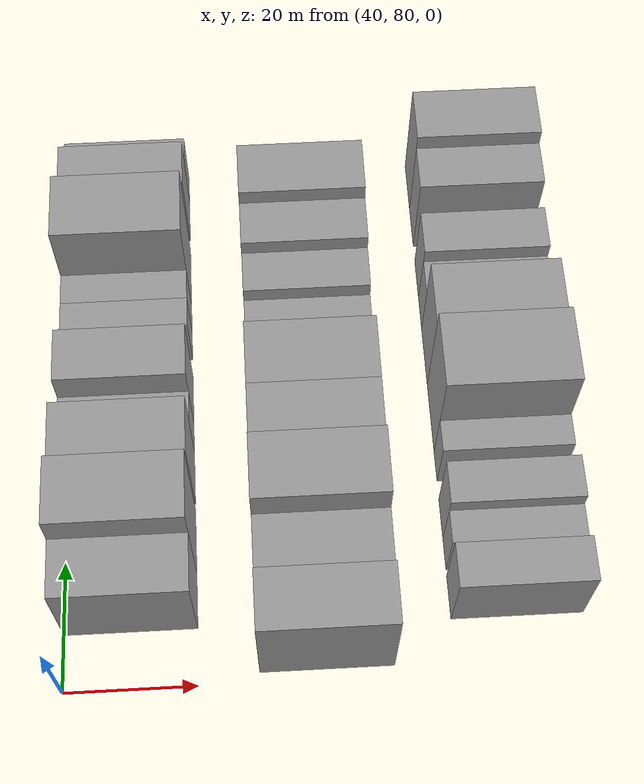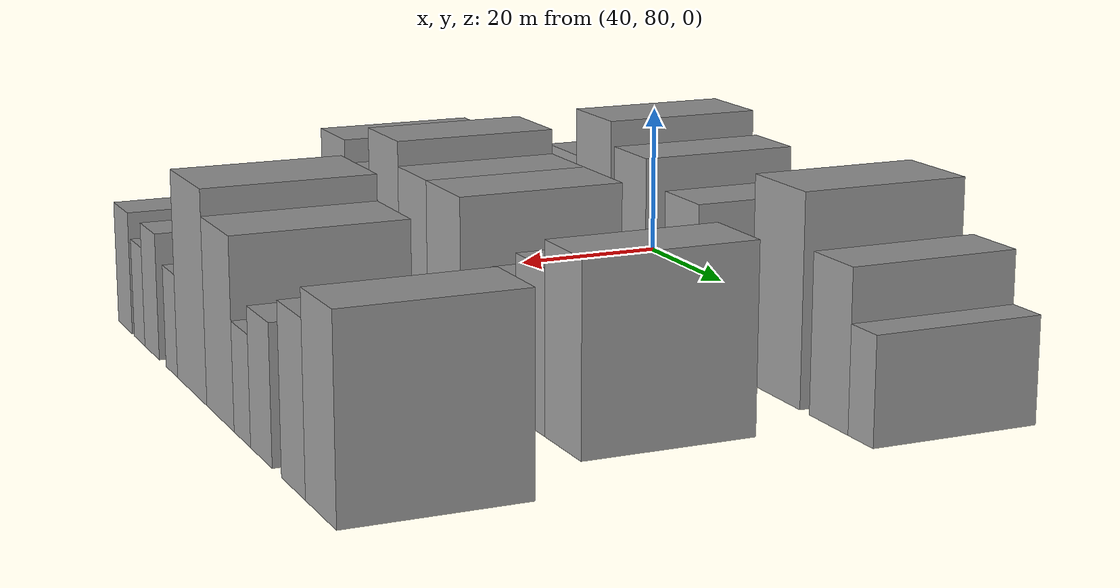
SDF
<sdf version="1.6">
 <world name="default">
  <model name="building_49">
   <static>1</static>
   <pose>50.0000 93.0449 0 0.000000 0.000000 0.000000</pose>
   <link name="link">
    <pose>0 0 9.00 0 0 0</pose>
    <collision name="collision"><geometry><box><size>20.0000 8.6791 18.0000</size></box></geometry></collision>
    <visual name="visual">
     <cast_shadows>0</cast_shadows>
     <geometry><box><size>20.0000 8.6791 18.0000</size></box></geometry>
     <material>
      <script>
       <uri>model://grey_wall/materials/scripts</uri>
       <uri>model://grey_wall/materials/textures</uri>
       <name>vrc/grey_wall</name>
      </script>
     </material>
    </visual>
   </link>
  </model>
  <model name="building_50">
   <static>1</static>
   <pose>50.0000 102.5092 0 0.000000 0.000000 0.000000</pose>
   <link name="link">
    <pose>0 0 12.00 0 0 0</pose>
    <collision name="collision"><geometry><box><size>20.0000 10.2495 24.0000</size></box></geometry></collision>
    <visual name="visual">
     <cast_shadows>0</cast_shadows>
     <geometry><box><size>20.0000 10.2495 24.0000</size></box></geometry>
     <material>
      <script>
       <uri>model://grey_wall/materials/scripts</uri>
       <uri>model://grey_wall/materials/textures</uri>
       <name>vrc/grey_wall</name>
      </script>
     </material>
    </visual>
   </link>
  </model>
  <model name="building_51">
   <static>1</static>
   <pose>50.0000 113.0198 0 0.000000 0.000000 0.000000</pose>
   <link name="link">
    <pose>0 0 10.50 0 0 0</pose>
    <collision name="collision"><geometry><box><size>20.0000 8.7718 21.0000</size></box></geometry></collision>
    <visual name="visual">
     <cast_shadows>0</cast_shadows>
     <geometry><box><size>20.0000 8.7718 21.0000</size></box></geometry>
     <material>
      <script>
       <uri>model://grey_wall/materials/scripts</uri>
       <uri>model://grey_wall/materials/textures</uri>
       <name>vrc/grey_wall</name>
      </script>
     </material>
    </visual>
   </link>
  </model>
  <model name="building_52">
   <static>1</static>
   <pose>50.0000 119.9617 0 0.000000 0.000000 0.000000</pose>
   <link name="link">
    <pose>0 0 6.00 0 0 0</pose>
    <collision name="collision"><geometry><box><size>20.0000 5.1119 12.0000</size></box></geometry></collision>
    <visual name="visual">
     <cast_shadows>0</cast_shadows>
     <geometry><box><size>20.0000 5.1119 12.0000</size></box></geometry>
     <material>
      <script>
       <uri>model://grey_wall/materials/scripts</uri>
       <uri>model://grey_wall/materials/textures</uri>
       <name>vrc/grey_wall</name>
      </script>
     </material>
    </visual>
   </link>
  </model>
  <model name="building_53">
   <static>1</static>
   <pose>50.0000 126.7689 0 0.000000 0.000000 0.000000</pose>
   <link name="link">
    <pose>0 0 9.00 0 0 0</pose>
    <collision name="collision"><geometry><box><size>20.0000 8.5026 18.0000</size></box></geometry></collision>
    <visual name="visual">
     <cast_shadows>0</cast_shadows>
     <geometry><box><size>20.0000 8.5026 18.0000</size></box></geometry>
     <material>
      <script>
       <uri>model://grey_wall/materials/scripts</uri>
       <uri>model://grey_wall/materials/textures</uri>
       <name>vrc/grey_wall</name>
      </script>
     </material>
    </visual>
   </link>
  </model>
  <model name="building_54">
   <static>1</static>
   <pose>50.0000 136.5120 0 0.000000 0.000000 0.000000</pose>
   <link name="link">
    <pose>0 0 6.00 0 0 0</pose>
    <collision name="collision"><geometry><box><size>20.0000 4.9835 12.0000</size></box></geometry></collision>
    <visual name="visual">
     <cast_shadows>0</cast_shadows>
     <geometry><box><size>20.0000 4.9835 12.0000</size></box></geometry>
     <material>
      <script>
       <uri>model://grey_wall/materials/scripts</uri>
       <uri>model://grey_wall/materials/textures</uri>
       <name>vrc/grey_wall</name>
      </script>
     </material>
    </visual>
   </link>
  </model>
  <model name="building_55">
   <static>1</static>
   <pose>50.0000 141.5558 0 0.000000 0.000000 0.000000</pose>
   <link name="link">
    <pose>0 0 6.00 0 0 0</pose>
    <collision name="collision"><geometry><box><size>20.0000 5.1041 12.0000</size></box></geometry></collision>
    <visual name="visual">
     <cast_shadows>0</cast_shadows>
     <geometry><box><size>20.0000 5.1041 12.0000</size></box></geometry>
     <material>
      <script>
       <uri>model://grey_wall/materials/scripts</uri>
       <uri>model://grey_wall/materials/textures</uri>
       <name>vrc/grey_wall</name>
      </script>
     </material>
    </visual>
   </link>
  </model>
  <model name="building_56">
   <static>1</static>
   <pose>50.0000 149.5086 0 0.000000 0.000000 0.000000</pose>
   <link name="link">
    <pose>0 0 12.00 0 0 0</pose>
    <collision name="collision"><geometry><box><size>20.0000 10.8015 24.0000</size></box></geometry></collision>
    <visual name="visual">
     <cast_shadows>0</cast_shadows>
     <geometry><box><size>20.0000 10.8015 24.0000</size></box></geometry>
     <material>
      <script>
       <uri>model://grey_wall/materials/scripts</uri>
       <uri>model://grey_wall/materials/textures</uri>
       <name>vrc/grey_wall</name>
      </script>
     </material>
    </visual>
   </link>
  </model>
  <model name="building_57">
   <static>1</static>
   <pose>50.0000 160.8490 0 0.000000 0.000000 0.000000</pose>
   <link name="link">
    <pose>0 0 9.00 0 0 0</pose>
    <collision name="collision"><geometry><box><size>20.0000 7.8793 18.0000</size></box></geometry></collision>
    <visual name="visual">
     <cast_shadows>0</cast_shadows>
     <geometry><box><size>20.0000 7.8793 18.0000</size></box></geometry>
     <material>
      <script>
       <uri>model://grey_wall/materials/scripts</uri>
       <uri>model://grey_wall/materials/textures</uri>
       <name>vrc/grey_wall</name>
      </script>
     </material>
    </visual>
   </link>
  </model>
  <model name="building_58">
   <static>1</static>
   <pose>50.0000 167.2366 0 0.000000 0.000000 0.000000</pose>
   <link name="link">
    <pose>0 0 6.00 0 0 0</pose>
    <collision name="collision"><geometry><box><size>20.0000 4.8959 12.0000</size></box></geometry></collision>
    <visual name="visual">
     <cast_shadows>0</cast_shadows>
     <geometry><box><size>20.0000 4.8959 12.0000</size></box></geometry>
     <material>
      <script>
       <uri>model://grey_wall/materials/scripts</uri>
       <uri>model://grey_wall/materials/textures</uri>
       <name>vrc/grey_wall</name>
      </script>
     </material>
    </visual>
   </link>
  </model>
  <model name="building_127">
   <static>1</static>
   <pose>79.0000 86.0922 0 0.000000 0.000000 0.000000</pose>
   <link name="link">
    <pose>0 0 10.50 0 0 0</pose>
    <collision name="collision"><geometry><box><size>20.0000 9.1073 21.0000</size></box></geometry></collision>
    <visual name="visual">
     <cast_shadows>0</cast_shadows>
     <geometry><box><size>20.0000 9.1073 21.0000</size></box></geometry>
     <material>
      <script>
       <uri>model://grey_wall/materials/scripts</uri>
       <uri>model://grey_wall/materials/textures</uri>
       <name>vrc/grey_wall</name>
      </script>
     </material>
    </visual>
   </link>
  </model>
  <model name="building_128">
   <static>1</static>
   <pose>79.0000 95.1321 0 0.000000 0.000000 0.000000</pose>
   <link name="link">
    <pose>0 0 9.00 0 0 0</pose>
    <collision name="collision"><geometry><box><size>20.0000 8.9725 18.0000</size></box></geometry></collision>
    <visual name="visual">
     <cast_shadows>0</cast_shadows>
     <geometry><box><size>20.0000 8.9725 18.0000</size></box></geometry>
     <material>
      <script>
       <uri>model://grey_wall/materials/scripts</uri>
       <uri>model://grey_wall/materials/textures</uri>
       <name>vrc/grey_wall</name>
      </script>
     </material>
    </visual>
   </link>
  </model>
  <model name="building_129">
   <static>1</static>
   <pose>79.0000 104.7010 0 0.000000 0.000000 0.000000</pose>
   <link name="link">
    <pose>0 0 12.00 0 0 0</pose>
    <collision name="collision"><geometry><box><size>20.0000 10.1653 24.0000</size></box></geometry></collision>
    <visual name="visual">
     <cast_shadows>0</cast_shadows>
     <geometry><box><size>20.0000 10.1653 24.0000</size></box></geometry>
     <material>
      <script>
       <uri>model://grey_wall/materials/scripts</uri>
       <uri>model://grey_wall/materials/textures</uri>
       <name>vrc/grey_wall</name>
      </script>
     </material>
    </visual>
   </link>
  </model>
  <model name="building_130">
   <static>1</static>
   <pose>79.0000 114.3850 0 0.000000 0.000000 0.000000</pose>
   <link name="link">
    <pose>0 0 10.50 0 0 0</pose>
    <collision name="collision"><geometry><box><size>20.0000 9.2029 21.0000</size></box></geometry></collision>
    <visual name="visual">
     <cast_shadows>0</cast_shadows>
     <geometry><box><size>20.0000 9.2029 21.0000</size></box></geometry>
     <material>
      <script>
       <uri>model://grey_wall/materials/scripts</uri>
       <uri>model://grey_wall/materials/textures</uri>
       <name>vrc/grey_wall</name>
      </script>
     </material>
    </visual>
   </link>
  </model>
  <model name="building_131">
   <static>1</static>
   <pose>79.0000 124.1394 0 0.000000 0.000000 0.000000</pose>
   <link name="link">
    <pose>0 0 10.50 0 0 0</pose>
    <collision name="collision"><geometry><box><size>20.0000 10.3058 21.0000</size></box></geometry></collision>
    <visual name="visual">
     <cast_shadows>0</cast_shadows>
     <geometry><box><size>20.0000 10.3058 21.0000</size></box></geometry>
     <material>
      <script>
       <uri>model://grey_wall/materials/scripts</uri>
       <uri>model://grey_wall/materials/textures</uri>
       <name>vrc/grey_wall</name>
      </script>
     </material>
    </visual>
   </link>
  </model>
  <model name="building_132">
   <static>1</static>
   <pose>79.0000 135.1444 0 0.000000 0.000000 0.000000</pose>
   <link name="link">
    <pose>0 0 6.00 0 0 0</pose>
    <collision name="collision"><geometry><box><size>20.0000 5.7042 12.0000</size></box></geometry></collision>
    <visual name="visual">
     <cast_shadows>0</cast_shadows>
     <geometry><box><size>20.0000 5.7042 12.0000</size></box></geometry>
     <material>
      <script>
       <uri>model://grey_wall/materials/scripts</uri>
       <uri>model://grey_wall/materials/textures</uri>
       <name>vrc/grey_wall</name>
      </script>
     </material>
    </visual>
   </link>
  </model>
  <model name="building_133">
   <static>1</static>
   <pose>79.0000 141.4276 0 0.000000 0.000000 0.000000</pose>
   <link name="link">
    <pose>0 0 7.50 0 0 0</pose>
    <collision name="collision"><geometry><box><size>20.0000 6.8623 15.0000</size></box></geometry></collision>
    <visual name="visual">
     <cast_shadows>0</cast_shadows>
     <geometry><box><size>20.0000 6.8623 15.0000</size></box></geometry>
     <material>
      <script>
       <uri>model://grey_wall/materials/scripts</uri>
       <uri>model://grey_wall/materials/textures</uri>
       <name>vrc/grey_wall</name>
      </script>
     </material>
    </visual>
   </link>
  </model>
  <model name="building_134">
   <static>1</static>
   <pose>79.0000 148.5829 0 0.000000 0.000000 0.000000</pose>
   <link name="link">
    <pose>0 0 9.00 0 0 0</pose>
    <collision name="collision"><geometry><box><size>20.0000 7.4484 18.0000</size></box></geometry></collision>
    <visual name="visual">
     <cast_shadows>0</cast_shadows>
     <geometry><box><size>20.0000 7.4484 18.0000</size></box></geometry>
     <material>
      <script>
       <uri>model://grey_wall/materials/scripts</uri>
       <uri>model://grey_wall/materials/textures</uri>
       <name>vrc/grey_wall</name>
      </script>
     </material>
    </visual>
   </link>
  </model>
  <model name="building_135">
   <static>1</static>
   <pose>79.0000 156.8227 0 0.000000 0.000000 0.000000</pose>
   <link name="link">
    <pose>0 0 10.50 0 0 0</pose>
    <collision name="collision"><geometry><box><size>20.0000 9.0311 21.0000</size></box></geometry></collision>
    <visual name="visual">
     <cast_shadows>0</cast_shadows>
     <geometry><box><size>20.0000 9.0311 21.0000</size></box></geometry>
     <material>
      <script>
       <uri>model://grey_wall/materials/scripts</uri>
       <uri>model://grey_wall/materials/textures</uri>
       <name>vrc/grey_wall</name>
      </script>
     </material>
    </visual>
   </link>
  </model>
  <model name="building_201">
   <static>1</static>
   <pose>108.0000 91.5136 0 0.000000 0.000000 0.000000</pose>
   <link name="link">
    <pose>0 0 7.50 0 0 0</pose>
    <collision name="collision"><geometry><box><size>20.0000 6.7601 15.0000</size></box></geometry></collision>
    <visual name="visual">
     <cast_shadows>0</cast_shadows>
     <geometry><box><size>20.0000 6.7601 15.0000</size></box></geometry>
     <material>
      <script>
       <uri>model://grey_wall/materials/scripts</uri>
       <uri>model://grey_wall/materials/textures</uri>
       <name>vrc/grey_wall</name>
      </script>
     </material>
    </visual>
   </link>
  </model>
  <model name="building_202">
   <static>1</static>
   <pose>108.0000 98.4161 0 0.000000 0.000000 0.000000</pose>
   <link name="link">
    <pose>0 0 6.00 0 0 0</pose>
    <collision name="collision"><geometry><box><size>20.0000 5.0449 12.0000</size></box></geometry></collision>
    <visual name="visual">
     <cast_shadows>0</cast_shadows>
     <geometry><box><size>20.0000 5.0449 12.0000</size></box></geometry>
     <material>
      <script>
       <uri>model://grey_wall/materials/scripts</uri>
       <uri>model://grey_wall/materials/textures</uri>
       <name>vrc/grey_wall</name>
      </script>
     </material>
    </visual>
   </link>
  </model>
  <model name="building_203">
   <static>1</static>
   <pose>108.0000 104.2230 0 0.000000 0.000000 0.000000</pose>
   <link name="link">
    <pose>0 0 7.50 0 0 0</pose>
    <collision name="collision"><geometry><box><size>20.0000 6.5690 15.0000</size></box></geometry></collision>
    <visual name="visual">
     <cast_shadows>0</cast_shadows>
     <geometry><box><size>20.0000 6.5690 15.0000</size></box></geometry>
     <material>
      <script>
       <uri>model://grey_wall/materials/scripts</uri>
       <uri>model://grey_wall/materials/textures</uri>
       <name>vrc/grey_wall</name>
      </script>
     </material>
    </visual>
   </link>
  </model>
  <model name="building_204">
   <static>1</static>
   <pose>108.0000 113.0110 0 0.000000 0.000000 0.000000</pose>
   <link name="link">
    <pose>0 0 6.00 0 0 0</pose>
    <collision name="collision"><geometry><box><size>20.0000 5.0070 12.0000</size></box></geometry></collision>
    <visual name="visual">
     <cast_shadows>0</cast_shadows>
     <geometry><box><size>20.0000 5.0070 12.0000</size></box></geometry>
     <material>
      <script>
       <uri>model://grey_wall/materials/scripts</uri>
       <uri>model://grey_wall/materials/textures</uri>
       <name>vrc/grey_wall</name>
      </script>
     </material>
    </visual>
   </link>
  </model>
  <model name="building_205">
   <static>1</static>
   <pose>108.0000 121.4779 0 0.000000 0.000000 0.000000</pose>
   <link name="link">
    <pose>0 0 12.00 0 0 0</pose>
    <collision name="collision"><geometry><box><size>20.0000 11.9268 24.0000</size></box></geometry></collision>
    <visual name="visual">
     <cast_shadows>0</cast_shadows>
     <geometry><box><size>20.0000 11.9268 24.0000</size></box></geometry>
     <material>
      <script>
       <uri>model://grey_wall/materials/scripts</uri>
       <uri>model://grey_wall/materials/textures</uri>
       <name>vrc/grey_wall</name>
      </script>
     </material>
    </visual>
   </link>
  </model>
  <model name="building_206">
   <static>1</static>
   <pose>108.0000 132.5848 0 0.000000 0.000000 0.000000</pose>
   <link name="link">
    <pose>0 0 10.50 0 0 0</pose>
    <collision name="collision"><geometry><box><size>20.0000 10.2871 21.0000</size></box></geometry></collision>
    <visual name="visual">
     <cast_shadows>0</cast_shadows>
     <geometry><box><size>20.0000 10.2871 21.0000</size></box></geometry>
     <material>
      <script>
       <uri>model://grey_wall/materials/scripts</uri>
       <uri>model://grey_wall/materials/textures</uri>
       <name>vrc/grey_wall</name>
      </script>
     </material>
    </visual>
   </link>
  </model>
  <model name="building_207">
   <static>1</static>
   <pose>108.0000 140.6499 0 0.000000 0.000000 0.000000</pose>
   <link name="link">
    <pose>0 0 6.00 0 0 0</pose>
    <collision name="collision"><geometry><box><size>20.0000 5.8429 12.0000</size></box></geometry></collision>
    <visual name="visual">
     <cast_shadows>0</cast_shadows>
     <geometry><box><size>20.0000 5.8429 12.0000</size></box></geometry>
     <material>
      <script>
       <uri>model://grey_wall/materials/scripts</uri>
       <uri>model://grey_wall/materials/textures</uri>
       <name>vrc/grey_wall</name>
      </script>
     </material>
    </visual>
   </link>
  </model>
  <model name="building_208">
   <static>1</static>
   <pose>108.0000 147.2092 0 0.000000 0.000000 0.000000</pose>
   <link name="link">
    <pose>0 0 7.50 0 0 0</pose>
    <collision name="collision"><geometry><box><size>20.0000 7.2757 15.0000</size></box></geometry></collision>
    <visual name="visual">
     <cast_shadows>0</cast_shadows>
     <geometry><box><size>20.0000 7.2757 15.0000</size></box></geometry>
     <material>
      <script>
       <uri>model://grey_wall/materials/scripts</uri>
       <uri>model://grey_wall/materials/textures</uri>
       <name>vrc/grey_wall</name>
      </script>
     </material>
    </visual>
   </link>
  </model>
  <model name="building_209">
   <static>1</static>
   <pose>108.0000 157.5887 0 0.000000 0.000000 0.000000</pose>
   <link name="link">
    <pose>0 0 9.00 0 0 0</pose>
    <collision name="collision"><geometry><box><size>20.0000 7.4833 18.0000</size></box></geometry></collision>
    <visual name="visual">
     <cast_shadows>0</cast_shadows>
     <geometry><box><size>20.0000 7.4833 18.0000</size></box></geometry>
     <material>
      <script>
       <uri>model://grey_wall/materials/scripts</uri>
       <uri>model://grey_wall/materials/textures</uri>
       <name>vrc/grey_wall</name>
      </script>
     </material>
    </visual>
   </link>
  </model>
  <model name="building_210">
   <static>1</static>
   <pose>108.0000 165.8610 0 0.000000 0.000000 0.000000</pose>
   <link name="link">
    <pose>0 0 10.50 0 0 0</pose>
    <collision name="collision"><geometry><box><size>20.0000 9.0614 21.0000</size></box></geometry></collision>
    <visual name="visual">
     <cast_shadows>0</cast_shadows>
     <geometry><box><size>20.0000 9.0614 21.0000</size></box></geometry>
     <material>
      <script>
       <uri>model://grey_wall/materials/scripts</uri>
       <uri>model://grey_wall/materials/textures</uri>
       <name>vrc/grey_wall</name>
      </script>
     </material>
    </visual>
   </link>
  </model>
 </world>
</sdf>
